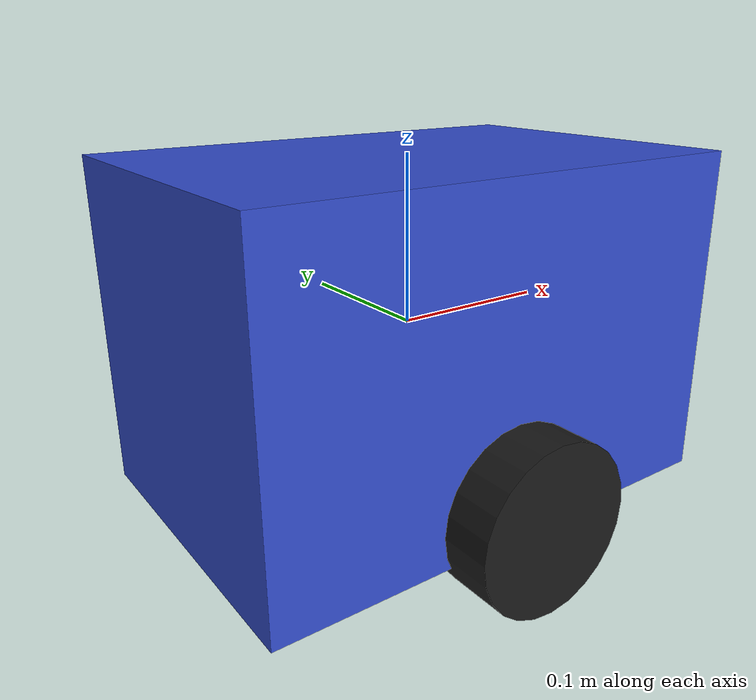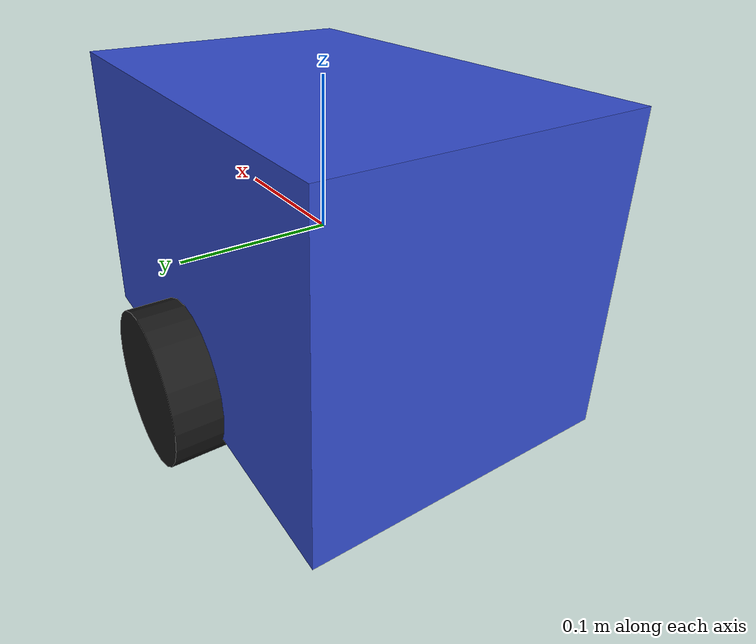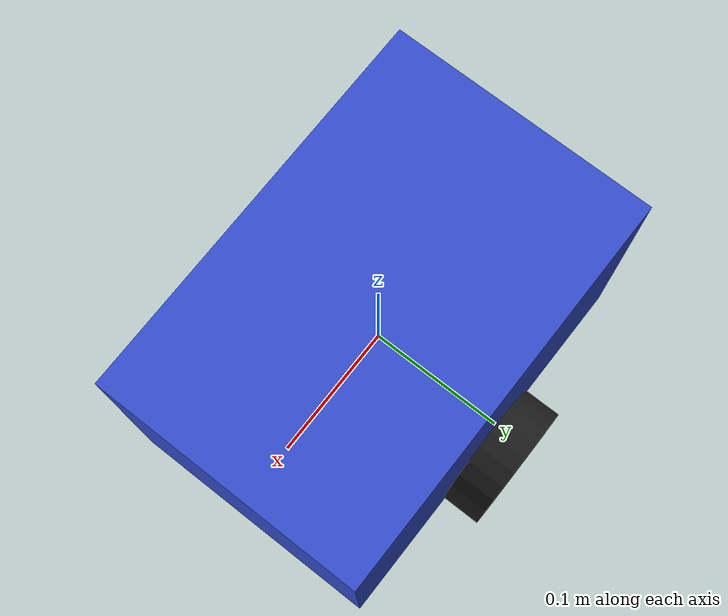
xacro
<?xml version="1.0"?>
<robot name="my_car" xmlns:xacro="http://ros.org/wiki/xacro">

  <!-- 底座 -->
  <link name="base_link">
    <inertial>
      <origin xyz="0 0 0.1" rpy="0 0 0"/>
      <mass value="2.0"/>
      <inertia ixx="0.1" ixy="0.0" ixz="0.0" iyy="0.1" iyz="0.0" izz="0.1"/>
    </inertial>
    <visual>
      <origin xyz="0 0 0" rpy="0 0 0"/>
      <geometry>
        <box size="0.3 0.2 0.2"/>
      </geometry>
      <material name="blue">
        <color rgba="0.2 0.3 0.8 1.0"/>
      </material>
    </visual>
    <collision>
      <origin xyz="0 0 0" rpy="0 0 0"/>
      <geometry>
        <box size="0.3 0.2 0.2"/>
      </geometry>
    </collision>
  </link>
  <gazebo reference="base_link">
    <material>Gazebo/Blue</material>
  </gazebo>

  <!-- 左轮 -->
  <link name="left_wheel_link">
    <inertial>
      <origin xyz="0 0 0" rpy="0 0 0"/>
      <mass value="0.5"/>
      <inertia ixx="0.01" ixy="0.0" ixz="0.0" iyy="0.01" iyz="0.0" izz="0.01"/>
    </inertial>
    <visual>
      <origin xyz="0 0 0" rpy="0 0 0"/>
      <geometry>
        <cylinder radius="0.05" length="0.04"/>
      </geometry>
      <material name="black">
        <color rgba="0.1 0.1 0.1 1.0"/>
      </material>
    </visual>
    <collision>
      <origin xyz="0 0 0" rpy="0 0 0"/>
      <geometry>
        <cylinder radius="0.05" length="0.04"/>
      </geometry>
    </collision>
  </link>
  <joint name="left_wheel_joint" type="continuous">
    <origin xyz="0.0 0.11 -0.08" rpy="1.5708 0 0"/>
    <parent link="base_link"/>
    <child link="left_wheel_link"/>
    <axis xyz="0 1 0"/>
  </joint>
  <gazebo reference="left_wheel_link">
    <material>Gazebo/Gray</material>
  </gazebo>

  <!-- 右轮 -->
  <link name="right_wheel_link">
    <inertial>
      <origin xyz="0 0 0" rpy="0 0 0"/>
      <mass value="0.5"/>
      <inertia ixx="0.01" ixy="0.0" ixz="0.0" iyy="0.01" iyz="0.0" izz="0.01"/>
    </inertial>
    <visual>
      <origin xyz="0 0 0" rpy="0 0 0"/>
      <geometry>
        <cylinder radius="0.05" length="0.04"/>
      </geometry>
      <material name="black">
        <color rgba="0.1 0.1 0.1 1.0"/>
      </material>
    </visual>
    <collision>
      <origin xyz="0 0 0" rpy="0 0 0"/>
      <geometry>
        <cylinder radius="0.05" length="0.04"/>
      </geometry>
    </collision>
  </link>
  <joint name="right_wheel_joint" type="continuous">
    <origin xyz="0.0 -0.11 -0.08" rpy="1.5708 0 0"/>
    <parent link="base_link"/>
    <child link="right_wheel_link"/>
    <axis xyz="0 1 0"/>
  </joint>
  <gazebo reference="right_wheel_link">
    <material>Gazebo/Gray</material>
  </gazebo>

  <!-- 前轮万向轮 (支撑轮) -->
  <link name="front_wheel_link">
    <inertial>
      <origin xyz="0 0 0" rpy="0 0 0"/>
      <mass value="0.2"/>
      <inertia ixx="0.001" ixy="0.0" ixz="0.0" iyy="0.001" iyz="0.0" izz="0.001"/>
    </inertial>
    <visual>
      <origin xyz="0 0 0" rpy="0 0 0"/>
      <geometry>
        <sphere radius="0.03"/>
      </geometry>
      <material name="gray">
        <color rgba="0.3 0.3 0.3 1.0"/>
      </material>
    </visual>
    <collision>
      <origin xyz="0 0 0" rpy="0 0 0"/>
      <geometry>
        <sphere radius="0.03"/>
      </geometry>
    </collision>
  </link>
  <joint name="front_wheel_joint" type="fixed">
    <origin xyz="0.12 0 -0.09" rpy="0 0 0"/>
    <parent link="base_link"/>
    <child link="front_wheel_link"/>
  </joint>
  <gazebo reference="front_wheel_link">
    <material>Gazebo/Gray</material>
  </gazebo>

</robot>
